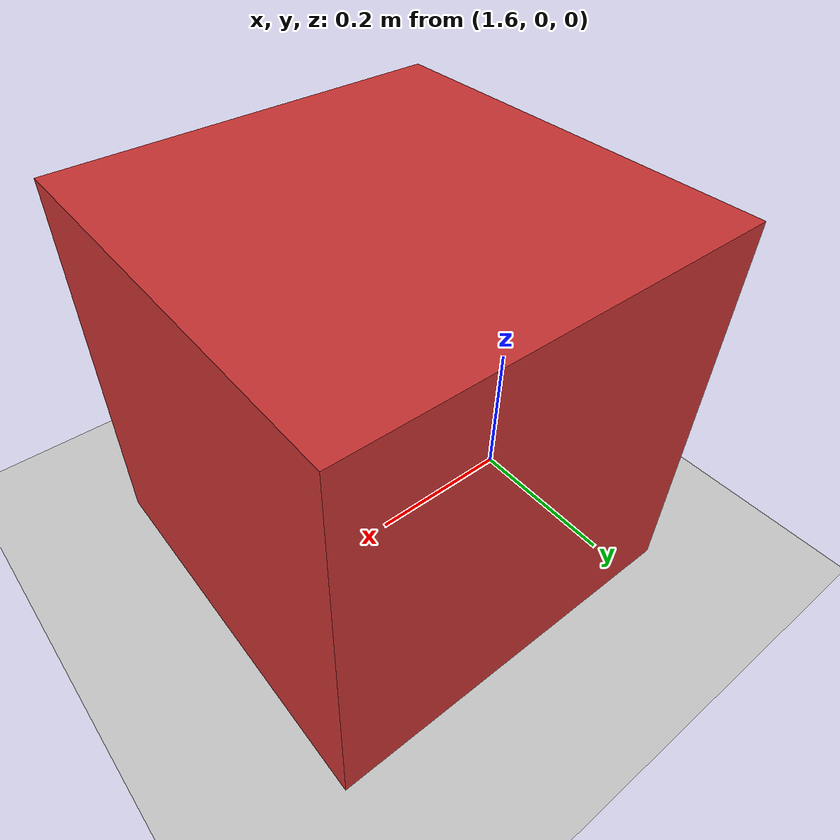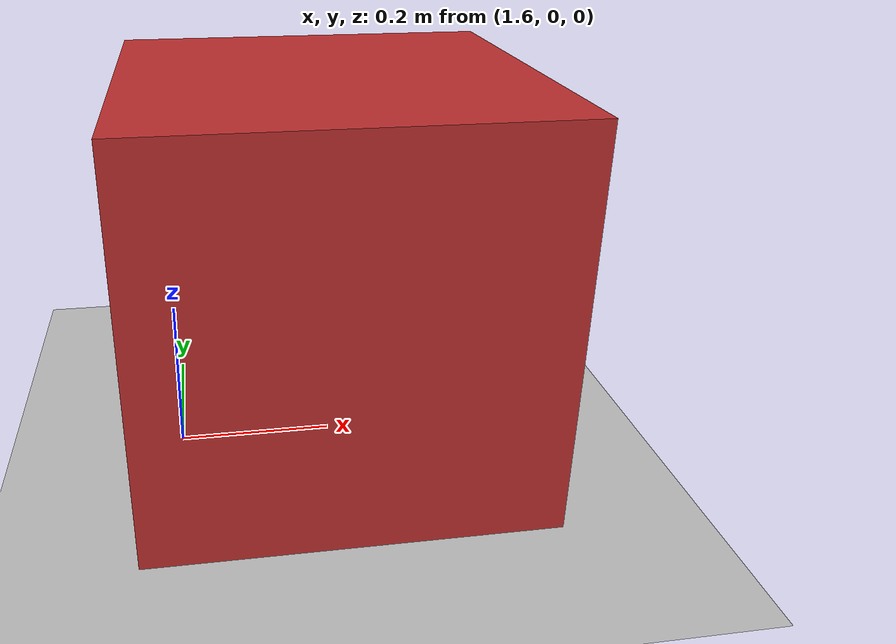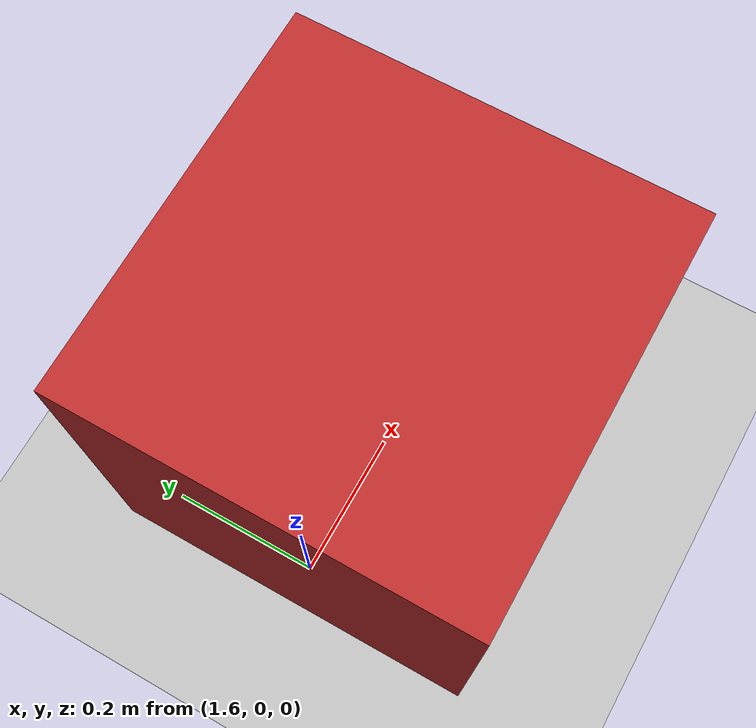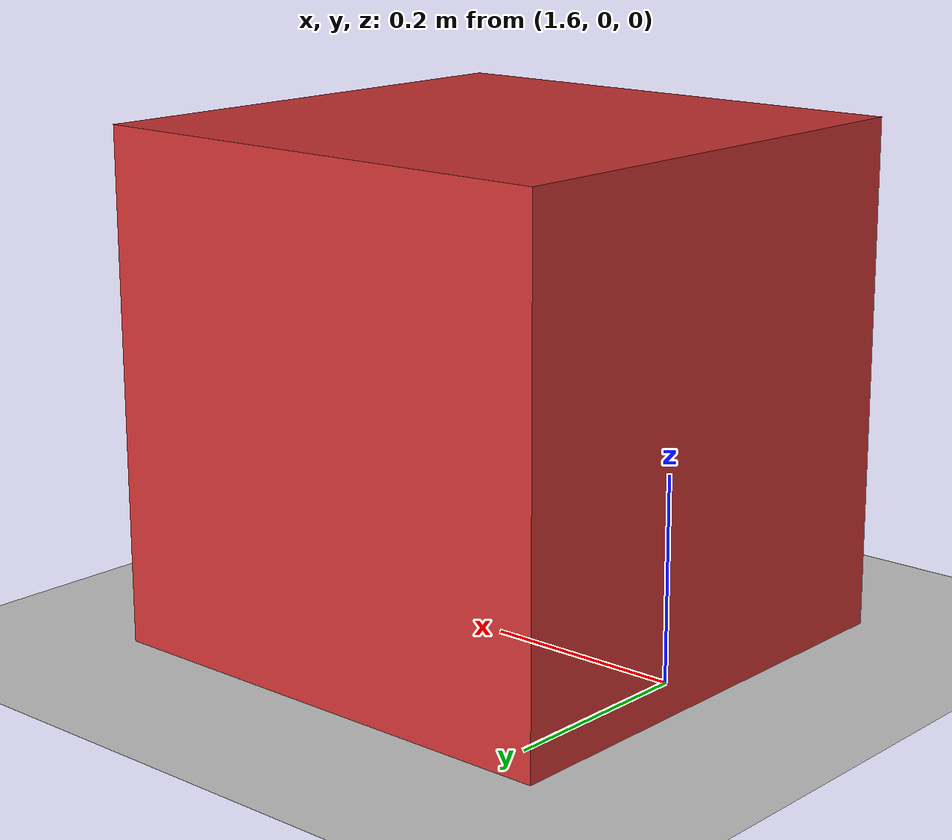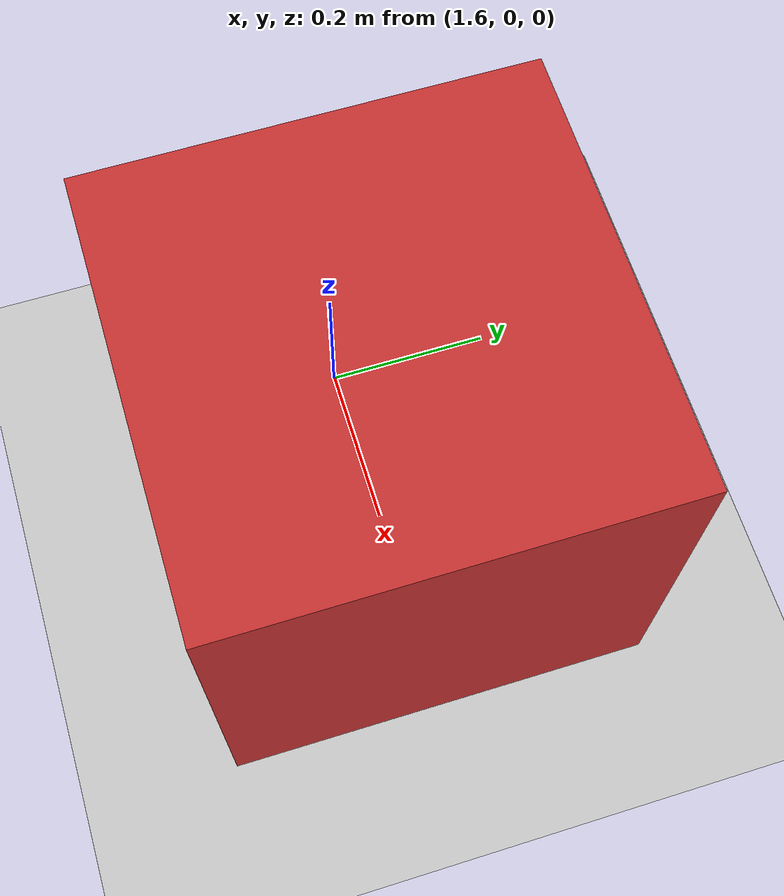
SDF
<?xml version="1.0" ?>
<sdf version="1.6">
  <world name="diffbot_world">
    <include>
      <uri>model://ground_plane</uri>
    </include>
    <include>
      <uri>model://sun</uri>
    </include>

    <model name="box_obstacle_1">
      <static>true</static>
      <pose>1.8 0.0 0.25 0 0 0</pose>
      <link name="link">
        <collision name="collision">
          <geometry>
            <box>
              <size>0.5 0.5 0.5</size>
            </box>
          </geometry>
        </collision>
        <visual name="visual">
          <geometry>
            <box>
              <size>0.5 0.5 0.5</size>
            </box>
          </geometry>
          <material>
            <ambient>0.8 0.2 0.2 1.0</ambient>
          </material>
        </visual>
      </link>
    </model>
  </world>
</sdf>
